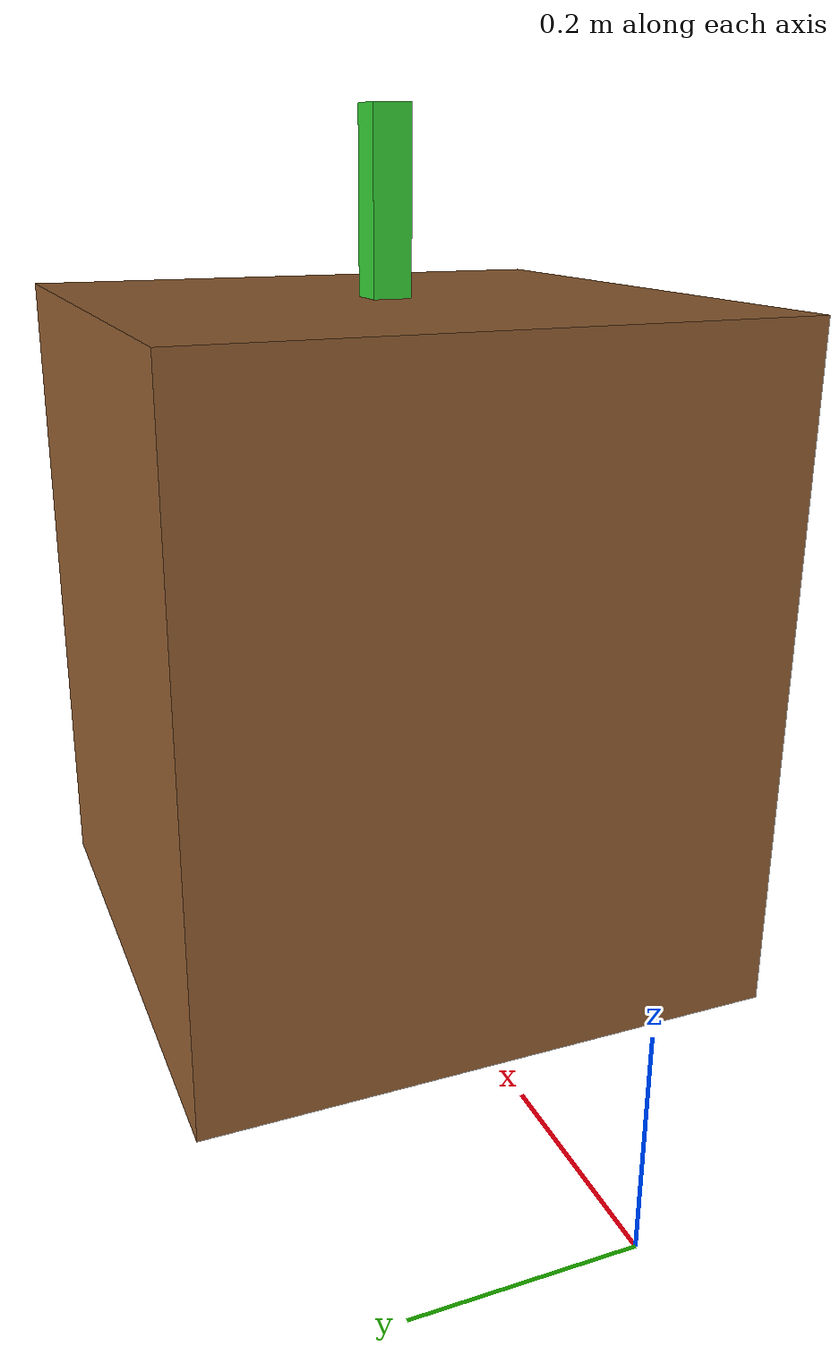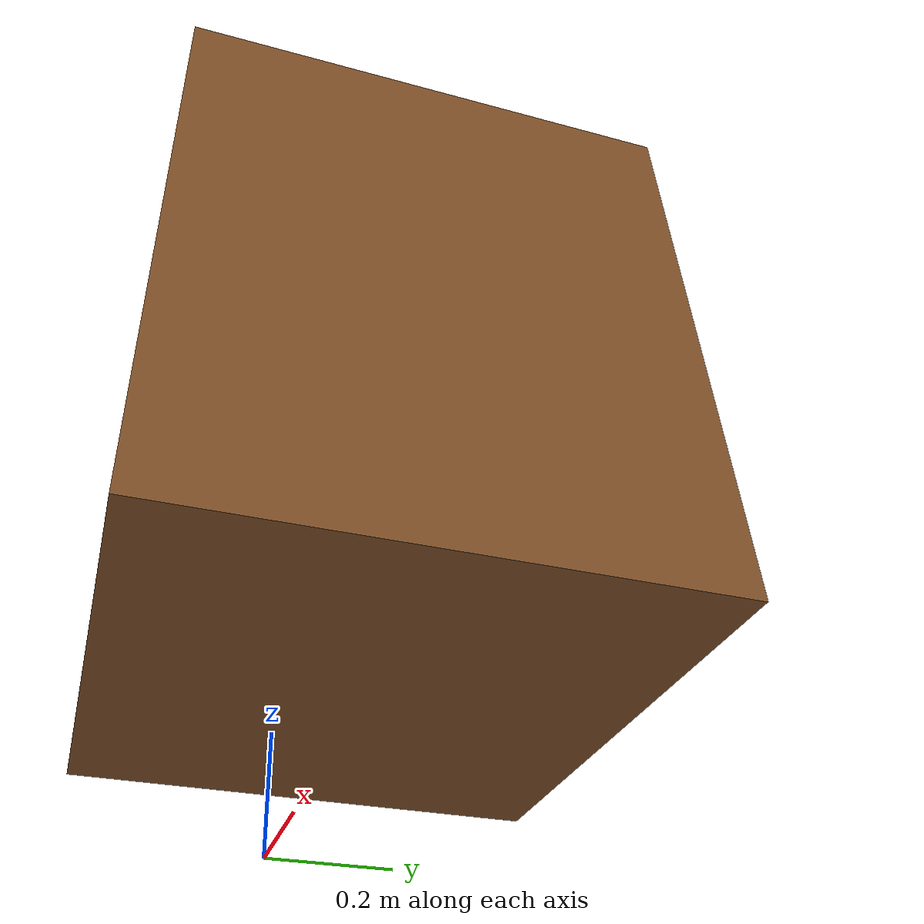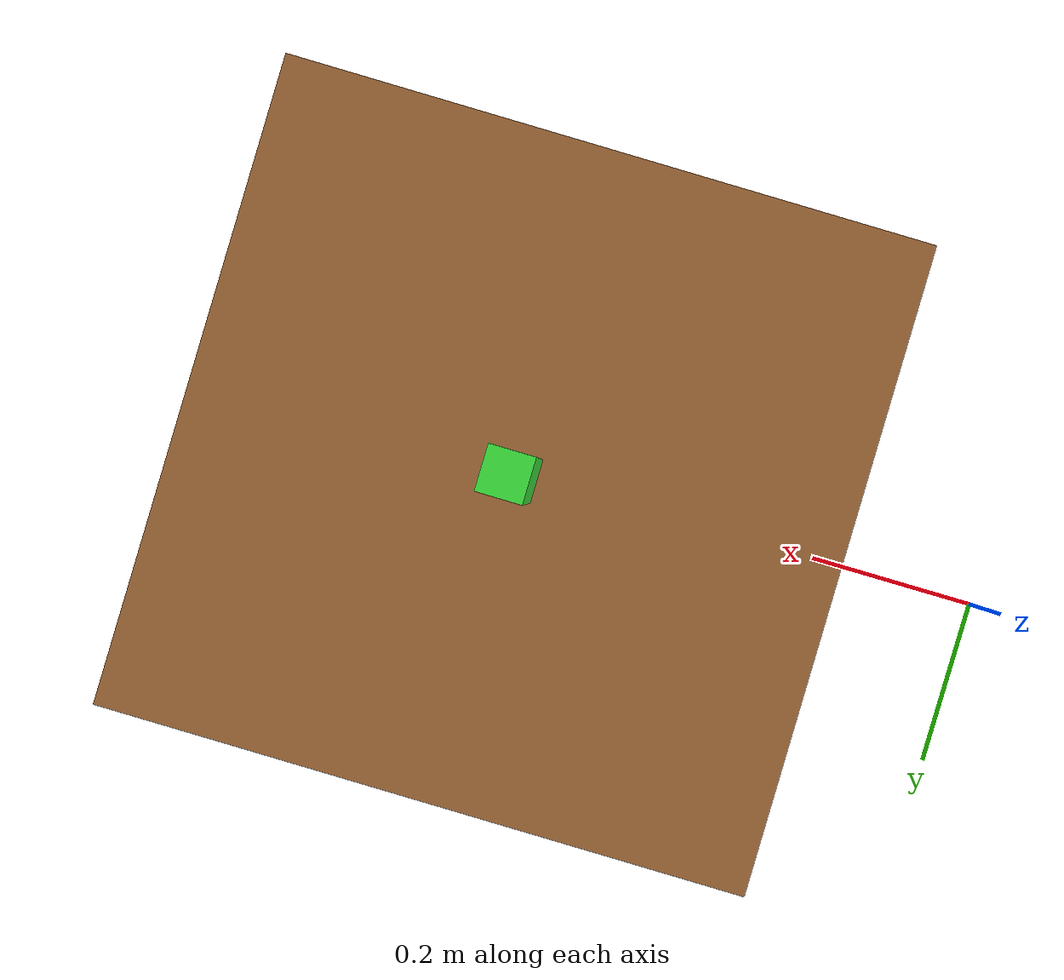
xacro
<?xml version="1.0"?>
<robot xmlns:xacro="http://ros.org/wiki/xacro" name="table_and_object">

  <link name="world"/>

  <!-- ============ TABLE ============ -->
  <!-- 60 cm x 60 cm top, 70 cm tall, centered at (0.55, 0, 0.35).
       Mass only matters for inertia consistency — fixed joint makes it static. -->
  <link name="table_link">
    <visual>
      <origin xyz="0 0 0" rpy="0 0 0"/>
      <geometry>
        <box size="0.6 0.6 0.7"/>
      </geometry>
      <material name="table_wood">
        <color rgba="0.55 0.35 0.18 1"/>
      </material>
    </visual>
    <collision>
      <origin xyz="0 0 0" rpy="0 0 0"/>
      <geometry>
        <box size="0.6 0.6 0.7"/>
      </geometry>
    </collision>
    <inertial>
      <mass value="10.0"/>
      <origin xyz="0 0 0" rpy="0 0 0"/>
      <inertia ixx="0.45" ixy="0" ixz="0" iyy="0.45" iyz="0" izz="0.6"/>
    </inertial>
  </link>

  <joint name="world_to_table" type="fixed">
    <parent link="world"/>
    <child link="table_link"/>
    <!-- 0.55 m forward of world origin. Table top at z = 0.35 + 0.35 = 0.7 m. -->
    <origin xyz="0.55 0 0.35" rpy="0 0 0"/>
  </joint>

  <!-- ============ CUBE (pickable) ============ -->
  <link name="cube_link">
    <visual>
      <origin xyz="0 0 0" rpy="0 0 0"/>
      <geometry>
        <box size="0.04 0.04 0.18"/>
      </geometry>
      <material name="cube_green">
        <color rgba="0.2 0.8 0.2 1"/>
      </material>
    </visual>
    <collision>
      <origin xyz="0 0 0" rpy="0 0 0"/>
      <geometry>
        <box size="0.04 0.04 0.18"/>
      </geometry>
    </collision>
    <inertial>
      <mass value="0.05"/>
      <origin xyz="0 0 0" rpy="0 0 0"/>
      <inertia ixx="1.42e-4" ixy="0" ixz="0" iyy="1.42e-4" iyz="0" izz="1.33e-5"/>
    </inertial>
  </link>

  <joint name="world_to_cube" type="floating">
    <parent link="world"/>
    <child link="cube_link"/>
    <!-- Start sitting on the table top (0.7 m) + half the cube height (0.09 m). -->
    <origin xyz="0.55 0 0.79" rpy="0 0 0"/>
  </joint>

  <mujoco>
    <reference name="cube_link">
      <geom name="cube_link_collision_0" friction="5.0 2.0 0.2" solref="-50000 -500" solimp="0.98 0.999 0.0001" condim="4"/>
    </reference>

  </mujoco>

</robot>
